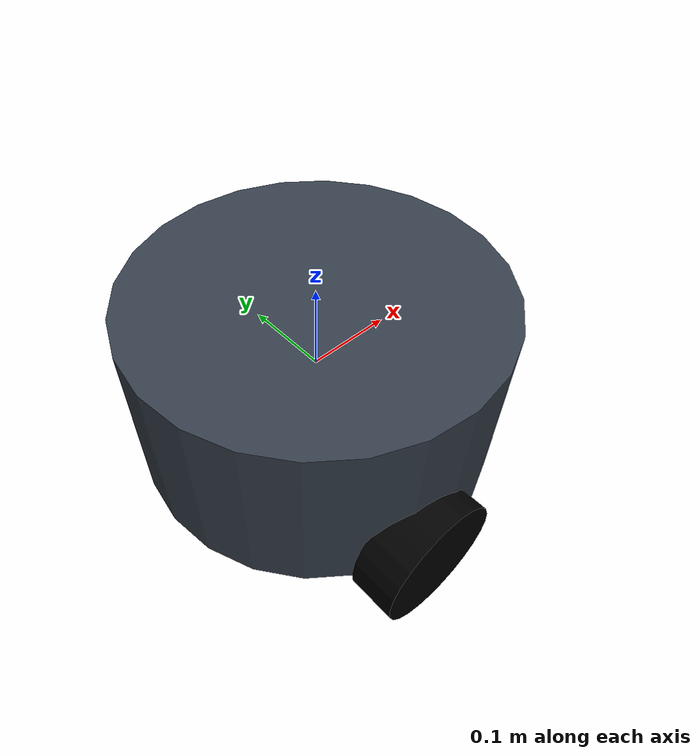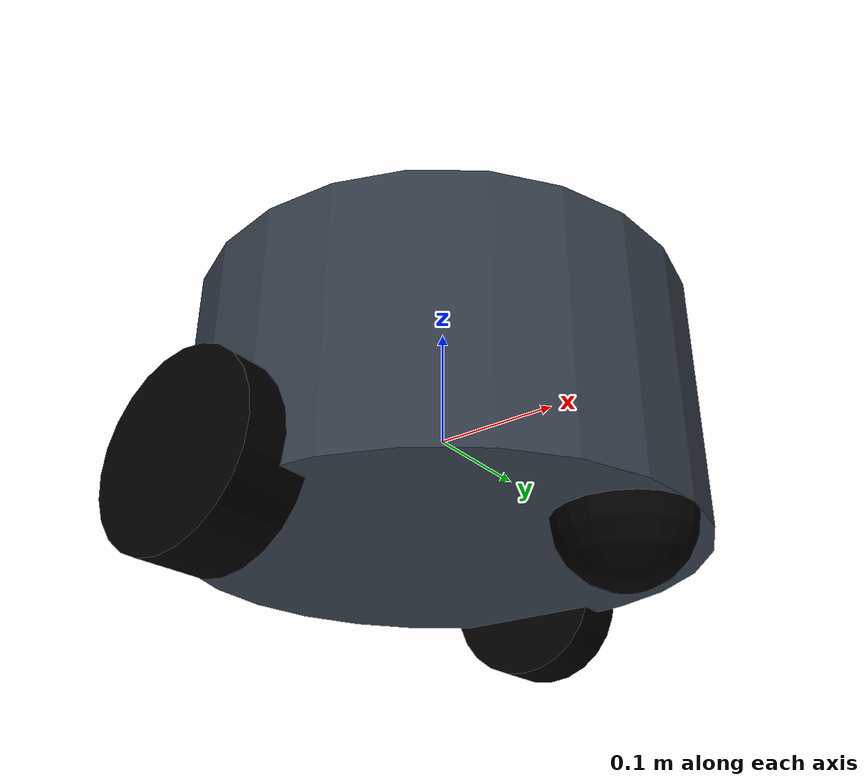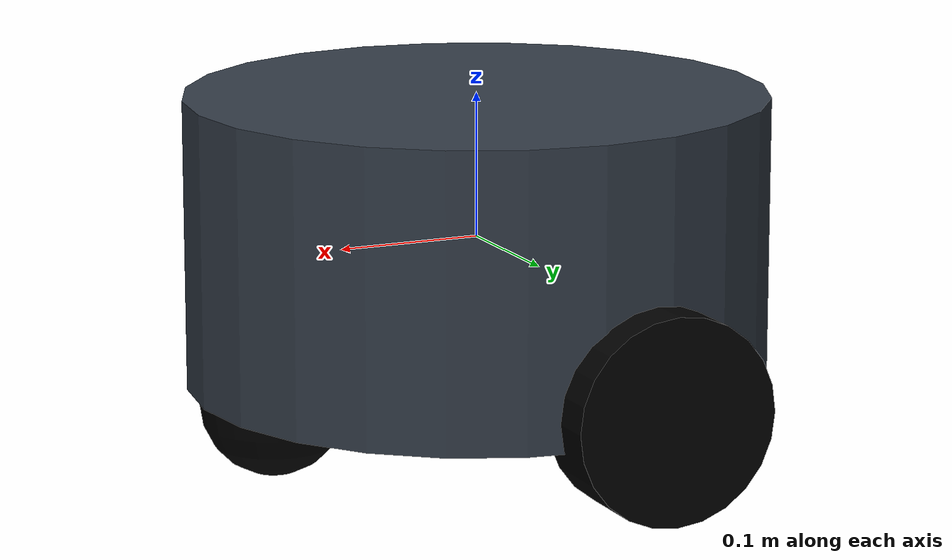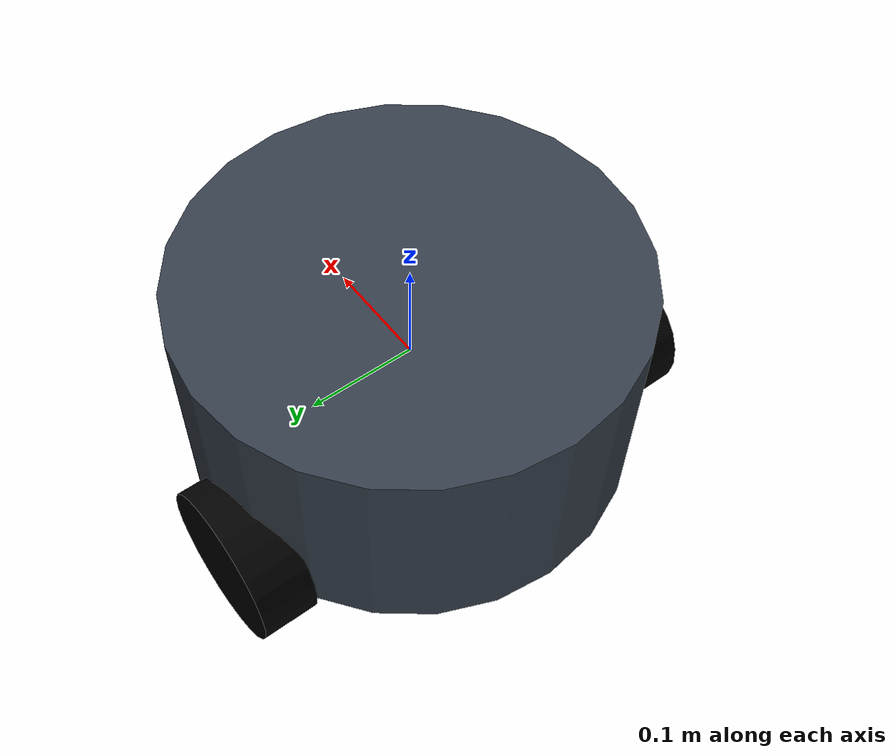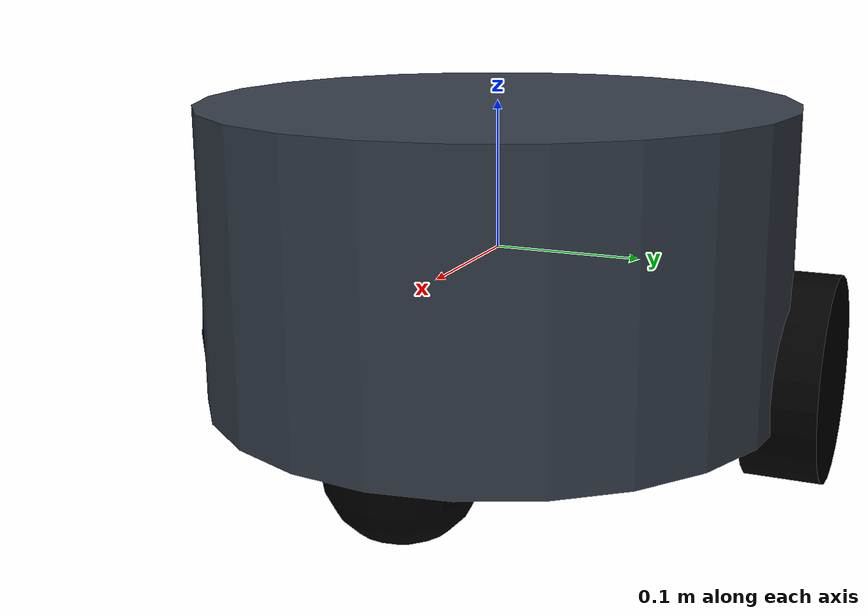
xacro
<?xml version="1.0" ?>
<robot name="thesis_bot" xmlns:xacro="https://www.ros.org/wiki/xacro" >
 <material name="black">
    <color rgba="0.0 0.0 0.0 1.0"/>
  </material>
  <material name="blue">
    <color rgba="0.203125 0.23828125 0.28515625 1.0"/>
  </material>
<!-- gazebo plugin -->

<gazebo>
    <plugin filename="libgazebo_ros_diff_drive.so" name="differential_drive_controller">
      <alwaysOn>true</alwaysOn>
      <updateRate>20</updateRate>
      <leftJoint>left_wheel_joint</leftJoint>
      <rightJoint>right_wheel_joint</rightJoint>
      <wheelSeparation>0.4</wheelSeparation>
      <wheelDiameter>0.14</wheelDiameter>
      <torque>0.01</torque>
      <commandTopic>cmd_vel</commandTopic>
      <odometryTopic>odom</odometryTopic>
      <odometryFrame>odom</odometryFrame>
      <robotBaseFrame>base_link</robotBaseFrame>
        <legacyMode>false</legacyMode>
    </plugin>
  </gazebo>

  <gazebo reference="base_link">
    <material>Gazebo/Blue</material>
  </gazebo>
  <gazebo reference="right_wheel">
    <material>Gazebo/Black</material>
  </gazebo>
  <gazebo reference="left_wheel">
    <material>Gazebo/Black</material>
  </gazebo>

<!-- base_link -->

<link name="base_link">
    <visual>
      <origin rpy="0 0 0" xyz="0 0 0"/>
      <geometry>
        <cylinder length="0.2" radius="0.2"/>
      </geometry>
      <material name="blue"/>
    </visual>

    <collision name="collision_chassis">
     <geometry>
      <cylinder length="0.2" radius="0.2"/>
     </geometry>
    </collision>
    <inertial>
     <mass value="1.0"/>
      <inertia ixx="0.0133" iyy="0.0133" izz="0.02"
      ixy="0" ixz="0" iyz="0"/>
    </inertial>
  </link>

  <!--   Link for right wheel  -->
  <link name="right_wheel">
   <visual name="link_right_wheel_visual">
    <origin rpy="0 1.5707 1.5707" xyz="0 0 0"/>
    <geometry>
     <cylinder length="0.05" radius="0.070"/>
    </geometry>
    <material name="black"/>
   </visual>

   <collision name="link_right_wheel_collision">
      <origin rpy="0 1.5707 1.5707" xyz="0 0 0" />
      <geometry>
        <cylinder length="0.05" radius="0.070"/>
      </geometry>
    </collision>

   <inertial>
    <mass value="0.2"/>
    <origin rpy="0 1.5707 1.5707" xyz="0 0 0"/>
    <inertia ixx="1.433e-4" iyy="1.433e-4" izz="2.45e-4"
      ixy="0" ixz="0" iyz="0"/>
   </inertial>
  </link>

  <!--   Joint for right wheel  -->

  <joint name="right_wheel_joint" type="continuous">
   <axis xyz="0 -1 0"/>
   <parent link="base_link"/>
   <child link="left_wheel"/>
   <origin rpy="0 0 0" xyz="-0.04 0.2 -0.08"/>
   <limit effort="10000" velocity="1000"/>
   <joint_properties damping="1.0" friction="1.0" />
  </joint>

  <!--   Link for left wheel -->

  <link name="left_wheel">
   <visual name="link_left_wheel_visual">
    <origin rpy="0 1.5707 1.5707" xyz="0 0 0"/>
    <geometry>
     <cylinder length="0.05" radius="0.070"/>
    </geometry>
    <material name="black"/>
   </visual>

   <collision name="link_right_wheel_collision">
      <origin rpy="0 1.5707 1.5707" xyz="0 0 0" />
      <geometry>
        <cylinder length="0.05" radius="0.070"/>
      </geometry>
    </collision>

   <inertial>
    <mass value="0.2"/>
    <origin rpy="0 1.5707 1.5707" xyz="0 0 0"/>
    <inertia ixx="1.433e-4" iyy="1.433e-4" izz="2.45e-4"
      ixy="0" ixz="0" iyz="0"/>
   </inertial>
  </link>

   <!--  Joint for left wheel -->

  <joint name="left_wheel_joint" type="continuous">
   <axis xyz="0 -1 0"/>
   <parent link="base_link"/>
   <child link="right_wheel"/>
   <origin rpy="0 0 0" xyz="-0.04 -0.2 -0.08"/>
   <limit effort="10000" velocity="1000"/>
   <joint_properties damping="1.0" friction="1.0" />
  </joint>

  <!-- link for caster wheel -->
  <link name="caster_wheel">
   <visual name="caster_visual">
    <origin rpy="0 0 0" xyz="0 0 0"/>
    <geometry>
     <sphere radius="0.05"/>
    </geometry>
    <material name="black"/>
   </visual>

   <collision name="caster_collsion">
    <origin rpy="0 0 0" xyz="0 0 0"/>
    <geometry>
     <sphere radius="0.05"/>
    </geometry>
   </collision>

   <inertial>
    <mass value="0.1"/>
    <origin rpy="0 0 0" xyz="0 0 0"/>
    <inertia ixx="1e-4" ixy="0" ixz="0" iyy="1e-4" iyz="0" izz="1e-4"/>
   </inertial>
  </link>

 <joint name="caster_joint" type="continuous">
  <axis xyz="0 -1 0"/>
  <parent link="base_link"/>
  <child link="caster_wheel"/>
  <origin rpy="0 0 0" xyz="0.15 0 -0.1"/>
  <limit effort="10000" velocity="1000"/>
  <joint_properties damping="1.0" friction="1.0" />
 </joint>

</robot>
